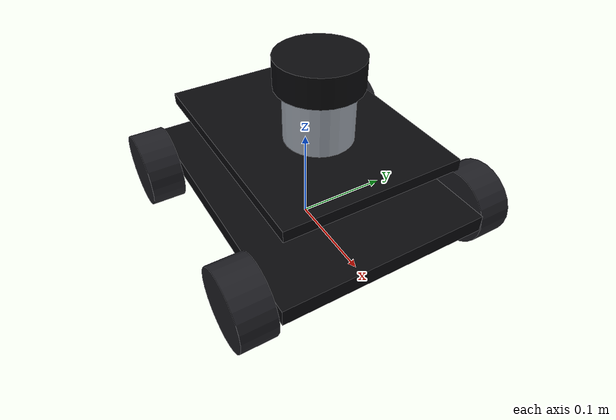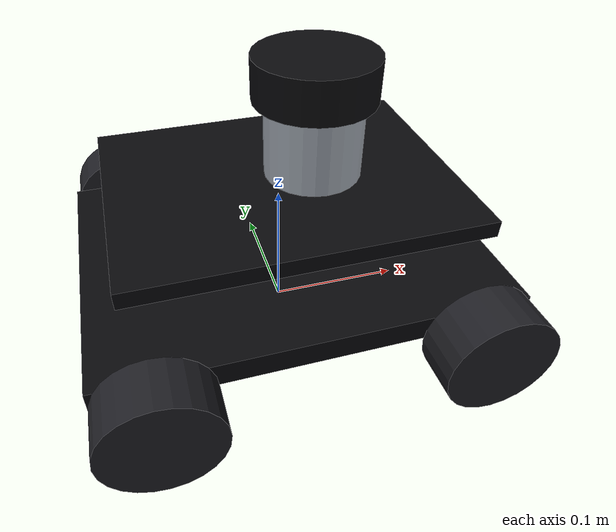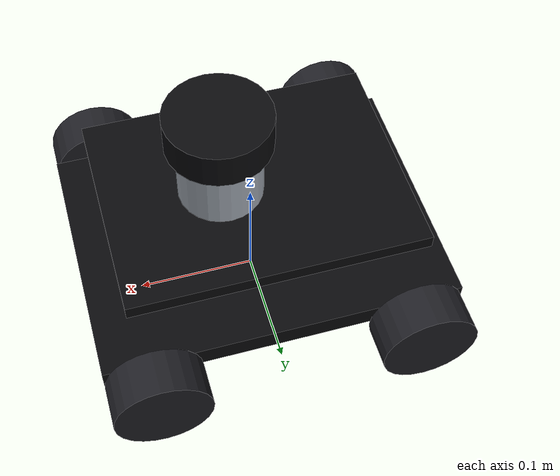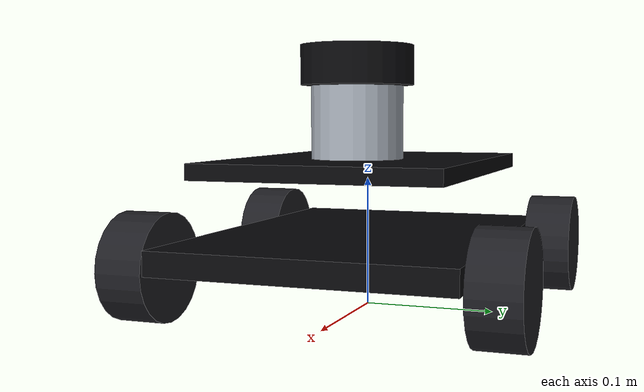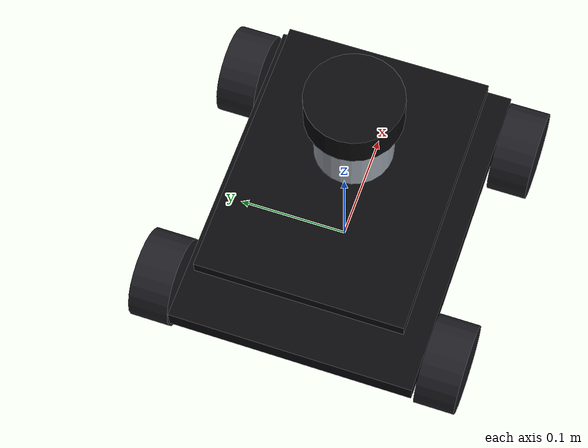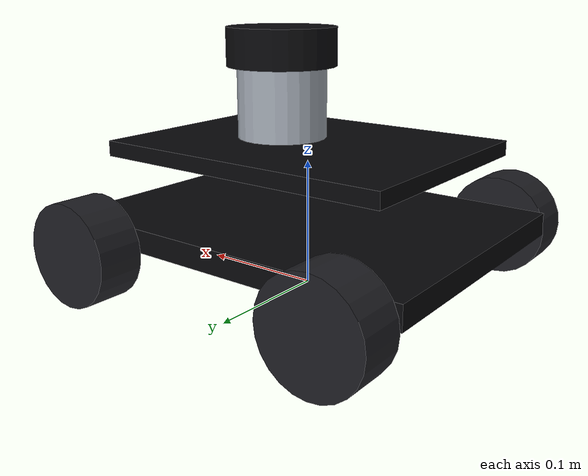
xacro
<?xml version="1.0"?>
<robot xmlns:xacro="http://www.ros.org/wiki/xacro" name="moebius_robot">
  <xacro:include filename="$(find moebius_description)/urdf/generated/robot_specs.xacro"/>

  <xacro:property name="pi" value="3.141592653589793"/>
  <xacro:property name="wheel_width" value="0.036"/>
  <xacro:property name="lower_length" value="0.300"/>
  <xacro:property name="lower_width" value="0.220"/>
  <xacro:property name="lower_height" value="0.018"/>
  <xacro:property name="upper_length" value="0.245"/>
  <xacro:property name="upper_width" value="0.185"/>
  <xacro:property name="upper_height" value="0.012"/>
  <xacro:property name="plate_gap" value="0.070"/>

  <material name="black"><color rgba="0.035 0.035 0.045 1"/></material>
  <material name="dark_grey"><color rgba="0.12 0.12 0.14 1"/></material>
  <material name="silver"><color rgba="0.65 0.68 0.72 1"/></material>
  <material name="sensor_black"><color rgba="0.04 0.04 0.05 1"/></material>

  <xacro:macro name="box_inertial" params="mass x y z">
    <inertial><mass value="${mass}"/><origin xyz="0 0 0"/><inertia ixx="${mass*(y*y+z*z)/12.0}" ixy="0" ixz="0" iyy="${mass*(x*x+z*z)/12.0}" iyz="0" izz="${mass*(x*x+y*y)/12.0}"/></inertial>
  </xacro:macro>

  <xacro:macro name="wheel" params="name x y">
    <link name="${name}_wheel_link">
      <visual><origin rpy="${pi/2.0} 0 0"/><geometry><cylinder radius="${wheel_radius}" length="${wheel_width}"/></geometry><material name="dark_grey"/></visual>
      <collision><origin rpy="${pi/2.0} 0 0"/><geometry><cylinder radius="${wheel_radius}" length="${wheel_width}"/></geometry></collision>
      <inertial><mass value="0.32"/><origin xyz="0 0 0"/><inertia ixx="0.00030" ixy="0" ixz="0" iyy="0.00026" iyz="0" izz="0.00030"/></inertial>
    </link>
    <joint name="${name}_wheel_joint" type="continuous"><parent link="base_link"/><child link="${name}_wheel_link"/><origin xyz="${x} ${y} 0"/><axis xyz="0 1 0"/><dynamics damping="0.02" friction="0.02"/></joint>
  </xacro:macro>

  <link name="base_footprint"/>
  <link name="base_link">
    <visual><origin xyz="0 0 ${lower_height/2.0}"/><geometry><box size="${lower_length} ${lower_width} ${lower_height}"/></geometry><material name="black"/></visual>
    <collision><origin xyz="0 0 ${lower_height/2.0}"/><geometry><box size="${lower_length} ${lower_width} ${lower_height}"/></geometry></collision>
    <xacro:box_inertial mass="3.0" x="${lower_length}" y="${lower_width}" z="${lower_height}"/>
  </link>
  <joint name="base_footprint_joint" type="fixed"><parent link="base_footprint"/><child link="base_link"/><origin xyz="0 0 ${wheel_radius}"/></joint>

  <link name="upper_plate_link"><visual><geometry><box size="${upper_length} ${upper_width} ${upper_height}"/></geometry><material name="black"/></visual><xacro:box_inertial mass="1.0" x="${upper_length}" y="${upper_width}" z="${upper_height}"/></link>
  <joint name="upper_plate_joint" type="fixed"><parent link="base_link"/><child link="upper_plate_link"/><origin xyz="0 0 ${plate_gap}"/></joint>

  <xacro:wheel name="front_left" x="${wheelbase/2.0}" y="${track_width/2.0}"/>
  <xacro:wheel name="front_right" x="${wheelbase/2.0}" y="${-track_width/2.0}"/>
  <xacro:wheel name="rear_left" x="${-wheelbase/2.0}" y="${track_width/2.0}"/>
  <xacro:wheel name="rear_right" x="${-wheelbase/2.0}" y="${-track_width/2.0}"/>

  <link name="lidar_mount_link"><visual><geometry><cylinder radius="0.035" length="0.055"/></geometry><material name="silver"/></visual></link>
  <joint name="lidar_mount_joint" type="fixed"><parent link="upper_plate_link"/><child link="lidar_mount_link"/><origin xyz="0.025 0 0.034"/></joint>
  <link name="laser_link"><visual><geometry><cylinder radius="0.043" length="0.030"/></geometry><material name="sensor_black"/></visual></link>
  <joint name="laser_joint" type="fixed"><parent link="lidar_mount_link"/><child link="laser_link"/><origin xyz="0 0 0.043"/></joint>
  <link name="imu_link"/>
  <joint name="imu_joint" type="fixed"><parent link="base_link"/><child link="imu_link"/><origin xyz="0 0 0.025"/></joint>
  <link name="camera_link"/>
  <joint name="camera_joint" type="fixed"><parent link="upper_plate_link"/><child link="camera_link"/><origin xyz="${upper_length/2.0} 0 0.025"/></joint>
</robot>

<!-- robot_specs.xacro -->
<!-- AUTO-GENERATED by scripts/generate_robot_config.py. DO NOT EDIT. -->
<robot xmlns:xacro="http://www.ros.org/wiki/xacro">
  <xacro:property name="wheel_radius" value="0.040000"/>
  <xacro:property name="wheel_diameter" value="0.080000"/>
  <xacro:property name="wheelbase" value="0.220000"/>
  <xacro:property name="track_width" value="0.260000"/>
  <xacro:property name="counts_per_wheel_rev" value="2464"/>
</robot>
